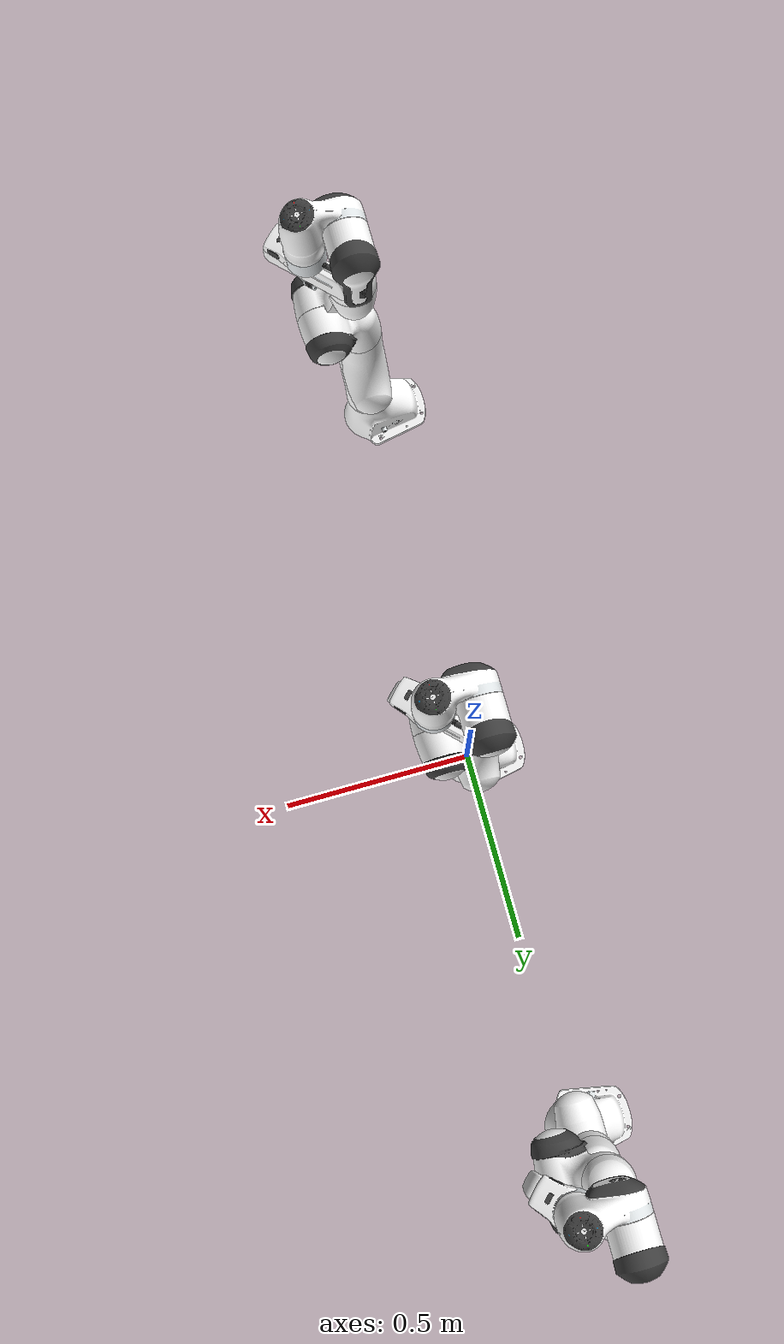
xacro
<?xml version="1.0"?>
<robot xmlns:xacro="http://www.ros.org/wiki/xacro" name="multi_panda_system">

    <xacro:arg name="initial_positions_file" default="initial_positions.yaml" />
    <xacro:arg name="ros2_control_hardware_type" default="isaac" />

    <xacro:include filename="panda_system_macro.urdf.xacro" />

    <link name="world"/>

    <xacro:panda_system_multi
        prefix="robot1_"
        parent="world"
        initial_positions_file="$(arg initial_positions_file)"
        ros2_control_hardware_type="$(arg ros2_control_hardware_type)">
        <origin xyz="0 0 0.0" rpy="0 0 0" />
    </xacro:panda_system_multi>

    <!-- ROBOT2 e ROBOT3: Fixos no world -->
    <xacro:panda_system_multi
        prefix="robot2_"
        parent="world"
        initial_positions_file="$(arg initial_positions_file)"
        ros2_control_hardware_type="$(arg ros2_control_hardware_type)">
        <origin xyz="0 1.0 0.01" rpy="0 0 0" />
    </xacro:panda_system_multi>

    <xacro:panda_system_multi
        prefix="robot3_"
        parent="world"
        initial_positions_file="$(arg initial_positions_file)"
        ros2_control_hardware_type="$(arg ros2_control_hardware_type)">
        <origin xyz="0 -1.0 0.01" rpy="0 0 0" />
    </xacro:panda_system_multi>

</robot>

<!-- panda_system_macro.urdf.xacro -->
<robot xmlns:xacro="http://www.ros.org/wiki/xacro">

  <xacro:include filename="panda_arm_macro.xacro" />
  <xacro:include filename="panda.ros2_control.xacro" />

  <xacro:macro name="panda_system_multi" params="prefix parent *origin initial_positions_file ros2_control_hardware_type">

    <joint name="${prefix}base_joint" type="floating">
      <xacro:insert_block name="origin" />
      <parent link="${parent}" />
      <child link="${prefix}panda_link0" />
    </joint>

    <xacro:panda_robot prefix="${prefix}" />

    <xacro:panda_ros2_control
        name="${prefix}PandaSystem"
        prefix="${prefix}"
        initial_positions_file="${initial_positions_file}"
        ros2_control_hardware_type="${ros2_control_hardware_type}"/>

  </xacro:macro>
</robot>

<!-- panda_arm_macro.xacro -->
<robot xmlns:xacro="http://www.ros.org/wiki/xacro">

  <xacro:macro name="panda_robot" params="prefix">

    <link name="${prefix}panda_link0">
      <visual>
        <geometry>
          <mesh filename="package://moveit_resources_panda_description/meshes/visual/link0.dae" />
        </geometry>
      </visual>
      <collision>
        <geometry>
          <mesh filename="package://moveit_resources_panda_description/meshes/collision/link0.stl" />
        </geometry>
      </collision>
      <inertial>
        <origin xyz="-0.041018 -0.00014 0.049974" rpy="0 0 0" />
        <mass value="0.629769"/>
        <inertia ixx="0.00315" iyy="0.00388" izz="0.004285" ixy="8.2904E-7" ixz="0.00015" iyz="8.2299E-6"/>
      </inertial>
    </link>

    <joint name="${prefix}panda_joint1" type="revolute">
      <safety_controller k_position="100.0" k_velocity="40.0" soft_lower_limit="-2.8973" soft_upper_limit="2.8973" />
      <origin rpy="0 0 0" xyz="0 0 0.333" />
      <parent link="${prefix}panda_link0" />
      <child link="${prefix}panda_link1" />
      <axis xyz="0 0 1" />
      <limit effort="87" lower="-2.9671" upper="2.9671" velocity="2.3925" />
      <dynamics D="1" K="7000" damping="0.003" friction="0.0" mu_coulomb="0" mu_viscous="16" />
    </joint>

    <link name="${prefix}panda_link1">
      <visual>
        <geometry>
          <mesh filename="package://moveit_resources_panda_description/meshes/visual/link1.dae" />
        </geometry>
      </visual>
      <collision>
        <geometry>
          <mesh filename="package://moveit_resources_panda_description/meshes/collision/link1.stl" />
        </geometry>
      </collision>
      <inertial>
        <origin xyz="0.003875 0.002081 -0.04762" rpy="0 0 0" />
        <mass value="4.970684"/>
        <inertia ixx="0.70337" iyy="0.70661" izz="0.009117" ixy="-0.000139" ixz="0.006772" iyz="0.019169"/>
      </inertial>
    </link>

    <joint name="${prefix}panda_joint2" type="revolute">
      <safety_controller k_position="100.0" k_velocity="40.0" soft_lower_limit="-1.7628" soft_upper_limit="1.7628" />
      <origin rpy="-1.57079632679 0 0" xyz="0 0 0" />
      <parent link="${prefix}panda_link1" />
      <child link="${prefix}panda_link2" />
      <axis xyz="0 0 1" />
      <limit effort="87" lower="-1.8326" upper="1.8326" velocity="2.3925" />
      <dynamics D="1" K="7000" damping="0.003" friction="0.0" mu_coulomb="0" mu_viscous="16" />
    </joint>

    <link name="${prefix}panda_link2">
      <visual>
        <geometry>
          <mesh filename="package://moveit_resources_panda_description/meshes/visual/link2.dae" />
        </geometry>
      </visual>
      <collision>
        <geometry>
          <mesh filename="package://moveit_resources_panda_description/meshes/collision/link2.stl" />
        </geometry>
      </collision>
      <inertial>
        <origin xyz="-0.003141 -0.02872  0.003495" rpy="0 0 0" />
        <mass value="0.646926"/>
        <inertia ixx="0.007962" iyy="2.811E-2" izz="2.5995E-2" ixy="-3.925E-3" ixz="1.0254E-2" iyz="7.04E-4"/>
      </inertial>
    </link>

    <joint name="${prefix}panda_joint3" type="revolute">
      <safety_controller k_position="100.0" k_velocity="40.0" soft_lower_limit="-2.8973" soft_upper_limit="2.8973" />
      <origin rpy="1.57079632679 0 0" xyz="0 -0.316 0" />
      <parent link="${prefix}panda_link2" />
      <child link="${prefix}panda_link3" />
      <axis xyz="0 0 1" />
      <limit effort="87" lower="-2.9671" upper="2.9671" velocity="2.3925" />
      <dynamics D="1" K="7000" damping="0.003" friction="0.0" mu_coulomb="0" mu_viscous="16" />
    </joint>

    <link name="${prefix}panda_link3">
      <visual>
        <geometry>
          <mesh filename="package://moveit_resources_panda_description/meshes/visual/link3.dae" />
        </geometry>
      </visual>
      <collision>
        <geometry>
          <mesh filename="package://moveit_resources_panda_description/meshes/collision/link3.stl" />
        </geometry>
      </collision>
      <inertial>
        <origin xyz="2.7518E-2 3.9252E-2 -6.6502E-2" rpy="0 0 0" />
        <mass value="3.228604"/>
        <inertia ixx="3.7242E-2" iyy="3.6155E-2" izz="1.083E-2" ixy="-4.761E-3" ixz="-1.1396E-2" iyz="-1.2805E-2"/>
      </inertial>
    </link>

    <joint name="${prefix}panda_joint4" type="revolute">
      <safety_controller k_position="100.0" k_velocity="40.0" soft_lower_limit="-3.0718" soft_upper_limit="0.0175" />
      <origin rpy="1.57079632679 0 0" xyz="0.0825 0 0" />
      <parent link="${prefix}panda_link3" />
      <child link="${prefix}panda_link4" />
      <axis xyz="0 0 1" />
      <limit effort="87" lower="-3.1416" upper="0.0873" velocity="2.3925" />
      <dynamics D="1" K="7000" damping="0.003" friction="0.0" mu_coulomb="0" mu_viscous="16" />
    </joint>

    <link name="${prefix}panda_link4">
      <visual>
        <geometry>
          <mesh filename="package://moveit_resources_panda_description/meshes/visual/link4.dae" />
        </geometry>
      </visual>
      <collision>
        <geometry>
          <mesh filename="package://moveit_resources_panda_description/meshes/collision/link4.stl" />
        </geometry>
      </collision>
      <inertial>
        <origin xyz="-5.317E-2 1.04419E-1 2.7454E-2" rpy="0 0 0" />
        <mass value="3.587895"/>
        <inertia ixx="2.5853E-2" iyy="1.9552E-2" izz="2.8323E-2" ixy="7.796E-3" ixz="-1.332E-3" iyz="8.641E-3"/>
      </inertial>
    </link>

    <joint name="${prefix}panda_joint5" type="revolute">
      <safety_controller k_position="100.0" k_velocity="40.0" soft_lower_limit="-2.8973" soft_upper_limit="2.8973" />
      <origin rpy="-1.57079632679 0 0" xyz="-0.0825 0.384 0" />
      <parent link="${prefix}panda_link4" />
      <child link="${prefix}panda_link5" />
      <axis xyz="0 0 1" />
      <limit effort="12" lower="-2.9671" upper="2.9671" velocity="2.8710" />
      <dynamics D="1" K="7000" damping="0.003" friction="0.0" mu_coulomb="0" mu_viscous="16" />
    </joint>

    <link name="${prefix}panda_link5">
      <visual>
        <geometry>
          <mesh filename="package://moveit_resources_panda_description/meshes/visual/link5.dae" />
        </geometry>
      </visual>
      <collision>
        <geometry>
          <mesh filename="package://moveit_resources_panda_description/meshes/collision/link5.stl" />
        </geometry>
      </collision>
      <inertial>
        <origin xyz="-1.1953E-2 4.1065E-2 -3.8437E-2" rpy="0 0 0" />
        <mass value="1.225946"/>
        <inertia ixx="3.5549E-2" iyy="2.9474E-2" izz="8.627E-3" ixy="-2.117E-3" ixz="-4.037E-3" iyz="2.29E-4"/>
      </inertial>
    </link>

    <joint name="${prefix}panda_joint6" type="revolute">
      <safety_controller k_position="100.0" k_velocity="40.0" soft_lower_limit="-0.0175" soft_upper_limit="3.7525" />
      <origin rpy="1.57079632679 0 0" xyz="0 0 0" />
      <parent link="${prefix}panda_link5" />
      <child link="${prefix}panda_link6" />
      <axis xyz="0 0 1" />
      <limit effort="12" lower="-0.0873" upper="3.8223" velocity="2.8710" />
      <dynamics D="1" K="7000" damping="0.003" friction="0.0" mu_coulomb="0" mu_viscous="16" />
    </joint>

    <link name="${prefix}panda_link6">
      <visual>
        <geometry>
          <mesh filename="package://moveit_resources_panda_description/meshes/visual/link6.dae" />
        </geometry>
      </visual>
      <collision>
        <geometry>
          <mesh filename="package://moveit_resources_panda_description/meshes/collision/link6.stl" />
        </geometry>
      </collision>
      <inertial>
        <origin xyz="6.0149E-2 -1.4117E-2 -1.0517E-2" rpy="0 0 0" />
        <mass value="1.666555"/>
        <inertia ixx="1.964E-3" iyy="4.354E-3" izz="5.433E-3" ixy="1.09E-4" ixz="-1.158E-3" iyz="3.41E-4"/>
      </inertial>
    </link>

    <joint name="${prefix}panda_joint7" type="revolute">
      <safety_controller k_position="100.0" k_velocity="40.0" soft_lower_limit="-2.8973" soft_upper_limit="2.8973" />
      <origin rpy="1.57079632679 0 0" xyz="0.088 0 0" />
      <parent link="${prefix}panda_link6" />
      <child link="${prefix}panda_link7" />
      <axis xyz="0 0 1" />
      <limit effort="12" lower="-2.9671" upper="2.9671" velocity="2.8710" />
      <dynamics D="1" K="7000" damping="0.003" friction="0.0" mu_coulomb="0" mu_viscous="16" />
    </joint>

    <link name="${prefix}panda_link7">
      <visual>
        <geometry>
          <mesh filename="package://moveit_resources_panda_description/meshes/visual/link7.dae" />
        </geometry>
      </visual>
      <collision>
        <geometry>
          <mesh filename="package://moveit_resources_panda_description/meshes/collision/link7.stl" />
        </geometry>
      </collision>
      <inertial>
        <origin xyz="1.0517E-2 -4.252E-3 6.1597E-2" rpy="0 0 0" />
        <mass value="7.35522E-1"/>
        <inertia ixx="1.2516E-2" iyy="1.0027E-2" izz="4.815E-3" ixy="-4.28E-4" ixz="-1.19E-3" iyz="-7.41E-4"/>
      </inertial>
    </link>

    <link name="${prefix}panda_link8" />
<joint name="${prefix}panda_joint8" type="fixed">
    <origin rpy="0 0 0" xyz="0 0 0.107" />
    <parent link="${prefix}panda_link7" />
    <child link="${prefix}panda_link8" />
    <axis xyz="0 0 0" />
</joint>

    <joint name="${prefix}panda_hand_joint" type="fixed">
        <parent link="${prefix}panda_link8" />
        <child link="${prefix}panda_hand" />
        <origin rpy="0 0 -0.785398163397" xyz="0 0 0" />
    </joint>

    <link name="${prefix}panda_hand">
        <visual>
            <geometry>
                <mesh filename="package://moveit_resources_panda_description/meshes/visual/hand.dae" />
            </geometry>
        </visual>
        <collision>
            <geometry>
                <mesh filename="package://moveit_resources_panda_description/meshes/collision/hand.stl" />
            </geometry>
        </collision>
        <inertial>
          <origin xyz="-0.01 0 0.03" rpy="0 0 0" />
          <mass value="0.73"/>
          <inertia ixx="0.001" iyy="0.0025" izz="0.0017" ixy="0" ixz="0" iyz="0"/>
        </inertial>
    </link>

    <link name="${prefix}panda_leftfinger">
        <visual>
            <geometry>
                <mesh filename="package://moveit_resources_panda_description/meshes/visual/finger.dae" />
            </geometry>
        </visual>
        <collision>
            <geometry>
                <mesh filename="package://moveit_resources_panda_description/meshes/collision/finger.stl" />
            </geometry>
        </collision>
        <inertial>
          <origin xyz="0 0 0" rpy="0 0 0" />
          <mass value="0.015"/>
          <inertia ixx="2.375E-6" iyy="2.375E-6" izz="7.5E-7" ixy="0" ixz="0" iyz="0"/>
        </inertial>
    </link>

    <link name="${prefix}panda_rightfinger">
        <visual>
            <origin rpy="0 0 3.14159265359" xyz="0 0 0" />
            <geometry>
                <mesh filename="package://moveit_resources_panda_description/meshes/visual/finger.dae" />
            </geometry>
        </visual>
        <collision>
            <origin rpy="0 0 3.14159265359" xyz="0 0 0" />
            <geometry>
                <mesh filename="package://moveit_resources_panda_description/meshes/collision/finger.stl" />
            </geometry>
        </collision>
        <inertial>
          <origin xyz="0 0 0" rpy="0 0 0" />
          <mass value="0.15"/>
          <inertia ixx="2.375E-6" iyy="2.375E-6" izz="7.5E-7" ixy="0" ixz="0" iyz="0"/>
        </inertial>
    </link>

    <joint name="${prefix}panda_finger_joint1" type="prismatic">
        <parent link="${prefix}panda_hand" />
        <child link="${prefix}panda_leftfinger" />
        <origin rpy="0 0 0" xyz="0 0 0.0584" />
        <axis xyz="0 1 0" />
        <limit effort="50" lower="-0.02" upper="0.04" velocity="0.2" />
        <dynamics damping="0.3" />
    </joint>

    <joint name="${prefix}panda_finger_joint2" type="prismatic">
        <parent link="${prefix}panda_hand" />
        <child link="${prefix}panda_rightfinger" />
        <origin rpy="0 0 0" xyz="0 0 0.0584" />
        <axis xyz="0 -1 0" />
        <limit effort="50" lower="-0.02" upper="0.04" velocity="0.2" />
        <dynamics damping="0.3" />
    </joint>

  </xacro:macro>
</robot>
